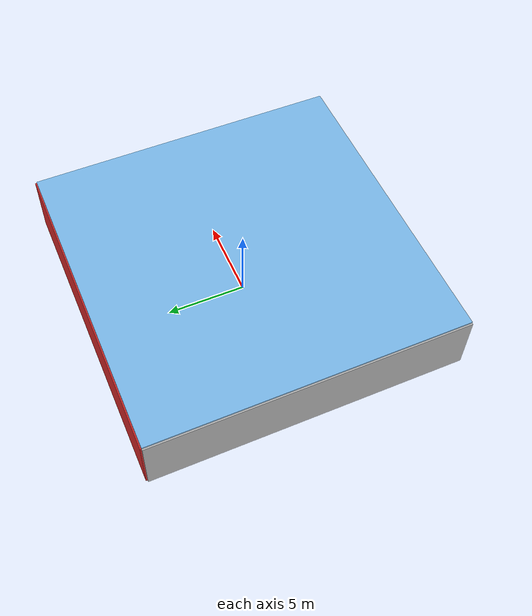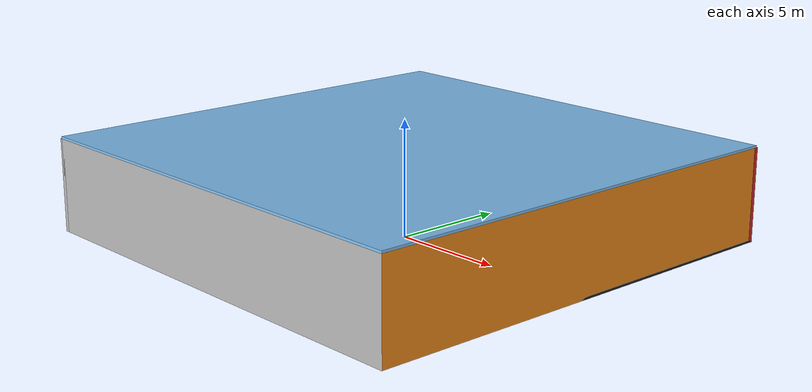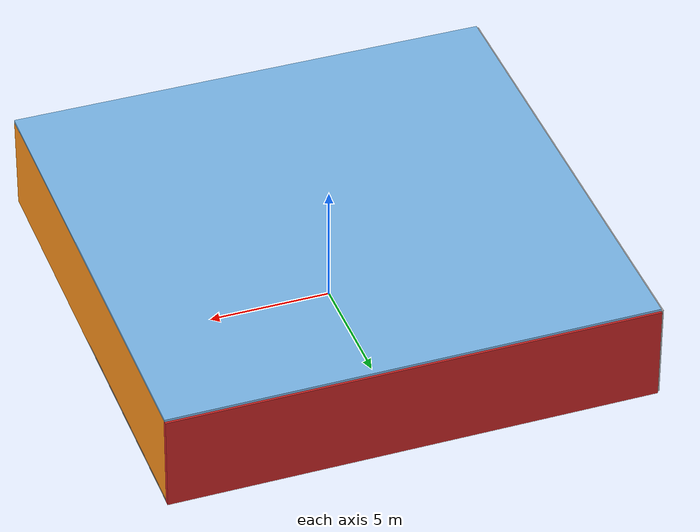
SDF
<sdf version="1.4">
 <world name="default">
  <physics type="ode">
   <max_step_size>0.001</max_step_size>
   <real_time_factor>1</real_time_factor>
   <real_time_update_rate>1000</real_time_update_rate>
   <gravity>0 0 -9.8</gravity>
  </physics>
  <scene><ambient>0.4 0.4 0.4 1</ambient><background>0.7 0.7 0.7 1</background><shadows>1</shadows></scene>
  <model name="Surrounding">
   <static>1</static>
   <link name="Ceiling">
    <collision name="Ceiling_Collision"><geometry><box><size>20 20 0.1</size></box></geometry></collision>
    <visual name="Ceiling_Visual">
     <geometry><box><size>20 20 0.1</size></box></geometry>
     <material>
      <script><uri>file://media/materials/scripts/gazebo.material</uri><name>Gazebo/SkyBlue</name></script>
     </material>
    </visual>
    <pose>0 0 4.05 0 0 0</pose>
   </link>
   <link name="Wall_South">
    <collision name="Wall_South_Collision">
     <geometry><box><size>20 0 4</size></box></geometry>
     <pose>0 0 2 0 -0 0</pose>
    </collision>
    <visual name="Wall_South_Visual">
     <pose>0 0 2 0 -0 0</pose>
     <geometry><box><size>20 0 4</size></box></geometry>
     <material>
      <script><uri>file://media/materials/scripts/gazebo.material</uri><name>Gazebo/JointAnchor</name></script>
     </material>
    </visual>
    <velocity_decay><linear>0</linear><angular>0</angular></velocity_decay>
    <pose>0 -10 0 0 -0 0</pose>
   </link>
   <link name="Wall_East">
    <collision name="Wall_21_Collision">
     <geometry><box><size>20 0 4</size></box></geometry>
     <pose>0 0 2 0 -0 0</pose>
    </collision>
    <visual name="Wall_21_Visual">
     <pose>0 0 2 0 -0 0</pose>
     <geometry><box><size>20 0 4</size></box></geometry>
     <material>
      <script><uri>file://media/materials/scripts/gazebo.material</uri><name>Gazebo/Orange</name></script>
     </material>
    </visual>
    <velocity_decay><linear>0</linear><angular>0</angular></velocity_decay>
    <pose>10 0 0 0 -0 1.5708</pose>
   </link>
   <link name="Wall_North">
    <collision name="Wall_22_Collision">
     <geometry><box><size>20 0.2 4</size></box></geometry>
     <pose>0 0 2 0 -0 0</pose>
    </collision>
    <visual name="Wall_22_Visual">
     <pose>0 0 2 0 -0 0</pose>
     <geometry><box><size>20 0.2 4</size></box></geometry>
     <material>
      <script><uri>file://media/materials/scripts/gazebo.material</uri><name>Gazebo/RedGlow</name></script>
     </material>
    </visual>
    <velocity_decay><linear>0</linear><angular>0</angular></velocity_decay>
    <pose>0 10 0 0 -0 0</pose>
   </link>
   <link name="Wall_West">
    <collision name="Wall_23_Collision">
     <geometry><box><size>20 0.2 4</size></box></geometry>
     <pose>0 0 2 0 -0 0</pose>
    </collision>
    <visual name="Wall_23_Visual">
     <pose>0 0 2 0 -0 0</pose>
     <geometry><box><size>20 0.2 4</size></box></geometry>
     <material>
      <script><uri>file://media/materials/scripts/gazebo.material</uri><name>Gazebo/LightOff</name></script>
     </material>
    </visual>
    <velocity_decay><linear>0</linear><angular>0</angular></velocity_decay>
    <pose>-10 0 0 0 0 -1.5708</pose>
   </link>
   <link name="Ground_link">
    <collision name="collision">
     <pose>0 0 .05 0 -0 0</pose>
     <geometry><box><size>20 20 0.1</size></box></geometry>
    </collision>
    <visual name="visual">
     <pose>0 0 .05 0 -0 0</pose>
     <geometry><box><size>20 20 0.1</size></box></geometry>
     <material>
      <script><uri>file://media/materials/scripts/gazebo.material</uri><name>Gazebo/FlatBlack</name></script>
     </material>
    </visual>
   </link>
   <static>1</static>
  </model>
  <spherical_coordinates>
   <surface_model>EARTH_WGS84</surface_model>
   <latitude_deg>0</latitude_deg>
   <longitude_deg>0</longitude_deg>
   <elevation>0</elevation>
   <heading_deg>0</heading_deg>
  </spherical_coordinates>
  <light name="lightball_0" type="diffuse">
   <diffuse>0.8 0.8 0.8 1</diffuse>
   <specular>0.2 0.2 0.2 1</specular>
   <attenuation>
    <range>100</range>
    <constant>0.7</constant>
    <linear>0.01</linear>
    <quadratic>0.001</quadratic>
   </attenuation>
   <direction>-0.5 0.1 -0.9</direction>
   <pose>5.88144701954 -7.71471944408 2.01547498698 0 0 0</pose>
  </light>
  <light name="lightball_1" type="diffuse">
   <diffuse>0.8 0.8 0.8 1</diffuse>
   <specular>0.2 0.2 0.2 1</specular>
   <attenuation>
    <range>100</range>
    <constant>0.7</constant>
    <linear>0.01</linear>
    <quadratic>0.001</quadratic>
   </attenuation>
   <direction>-0.5 0.1 -0.9</direction>
   <pose>-4.84403335703 -9.45627549569 0.847267339469 0 0 0</pose>
  </light>
  <light name="lightball_2" type="diffuse">
   <diffuse>0.8 0.8 0.8 1</diffuse>
   <specular>0.2 0.2 0.2 1</specular>
   <attenuation>
    <range>100</range>
    <constant>0.7</constant>
    <linear>0.01</linear>
    <quadratic>0.001</quadratic>
   </attenuation>
   <direction>-0.5 0.1 -0.9</direction>
   <pose>8.7923553968 9.54050923226 0.5201319295 0 0 0</pose>
  </light>
  <light name="lightball_3" type="diffuse">
   <diffuse>0.8 0.8 0.8 1</diffuse>
   <specular>0.2 0.2 0.2 1</specular>
   <attenuation>
    <range>100</range>
    <constant>0.7</constant>
    <linear>0.01</linear>
    <quadratic>0.001</quadratic>
   </attenuation>
   <direction>-0.5 0.1 -0.9</direction>
   <pose>2.1689169634 -3.92363540272 2.81693792996 0 0 0</pose>
  </light>
  <light name="lightball_4" type="diffuse">
   <diffuse>0.8 0.8 0.8 1</diffuse>
   <specular>0.2 0.2 0.2 1</specular>
   <attenuation>
    <range>100</range>
    <constant>0.7</constant>
    <linear>0.01</linear>
    <quadratic>0.001</quadratic>
   </attenuation>
   <direction>-0.5 0.1 -0.9</direction>
   <pose>-9.55101648142 -7.43362062909 2.92311638053 0 0 0</pose>
  </light>
  <light name="lightball_5" type="diffuse">
   <diffuse>0.8 0.8 0.8 1</diffuse>
   <specular>0.2 0.2 0.2 1</specular>
   <attenuation>
    <range>100</range>
    <constant>0.7</constant>
    <linear>0.01</linear>
    <quadratic>0.001</quadratic>
   </attenuation>
   <direction>-0.5 0.1 -0.9</direction>
   <pose>-6.56889975831 -7.20632719611 3.32739070885 0 0 0</pose>
  </light>
  <light name="lightball_6" type="diffuse">
   <diffuse>0.8 0.8 0.8 1</diffuse>
   <specular>0.2 0.2 0.2 1</specular>
   <attenuation>
    <range>100</range>
    <constant>0.7</constant>
    <linear>0.01</linear>
    <quadratic>0.001</quadratic>
   </attenuation>
   <direction>-0.5 0.1 -0.9</direction>
   <pose>4.03942228364 -3.52893659875 1.56250996124 0 0 0</pose>
  </light>
  <include>
   <uri>model://robocup_3Dsim_goal</uri>
   <pose>-5.25655412453 -3.82255805386 0 0 0 2.53597972046</pose>
  </include>
  <include>
   <uri>model://construction_cone</uri>
   <pose>-1.97081858848 -8.24874938038 0 0 0 1.22853311981</pose>
  </include>
  <include>
   <uri>model://robocup_3Dsim_goal</uri>
   <pose>1.4346222404 -4.36047000004 0 0 0 1.41912804781</pose>
  </include>
  <include><uri>model://cabinet</uri><pose>1.80839214579 4.28761733796 0 0 0 2.40320488759</pose></include>
  <include>
   <uri>model://construction_cone</uri>
   <pose>7.25857972016 -4.57685605316 0 0 0 2.54777396077</pose>
  </include>
  <include><uri>model://cabinet</uri><pose>8.29937747433 1.3757943242 0 0 0 1.9182182681</pose></include>
 </world>
</sdf>

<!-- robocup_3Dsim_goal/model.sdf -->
<sdf version="1.5">
  <model name="robocup_3d_goal">
    <static>true</static>
    <link name="left_post">
      <pose>0 1.05 0.45 0 0 0</pose>
      <collision name="collision">
        <geometry>
          <cylinder>
            <radius>0.05</radius>
            <length>0.9</length>
          </cylinder>
        </geometry>
      </collision>
      <visual name="visual">
        <geometry>
          <cylinder>
            <radius>0.05</radius>
            <length>0.9</length>
          </cylinder>
        </geometry>
        <material>
          <script>
            <uri>file://media/materials/scripts/gazebo.material</uri>
            <name>Gazebo/ZincYellow</name>
          </script>
        </material>
      </visual>
    </link>
    <link name="left_support_horiz_lower">
      <pose>0.30 1.05 0.01 0 0 0</pose>
      <collision name="collision">
        <geometry>
          <box>
            <size>0.50 0.02 0.02</size>
          </box>
        </geometry>
      </collision>
      <visual name="visual">
        <geometry>
          <box>
            <size>0.50 0.02 0.02</size>
          </box>
        </geometry>
        <material>
          <script>
            <uri>file://media/materials/scripts/gazebo.material</uri>
            <name>Gazebo/White</name>
          </script>
        </material>
      </visual>
    </link>
    <link name="left_support_horiz_upper">
      <pose>0.30 1.05 0.79 0 0 0</pose>
      <collision name="collision">
        <geometry>
          <box>
            <size>0.50 0.02 0.02</size>
          </box>
        </geometry>
      </collision>
      <visual name="visual">
        <geometry>
          <box>
            <size>0.50 0.02 0.02</size>
          </box>
        </geometry>
        <material>
          <script>
            <uri>file://media/materials/scripts/gazebo.material</uri>
            <name>Gazebo/White</name>
          </script>
        </material>
      </visual>
    </link>
    <link name="left_support_vertical">
      <pose>0.56 1.05 0.4 0 1.5708 0</pose>
      <collision name="collision">
        <geometry>
          <box>
            <size>0.80 0.02 0.02</size>
          </box>
        </geometry>
      </collision>
      <visual name="visual">
        <geometry>
          <box>
            <size>0.80 0.02 0.02</size>
          </box>
        </geometry>
        <material>
          <script>
            <uri>file://media/materials/scripts/gazebo.material</uri>
            <name>Gazebo/White</name>
          </script>
        </material>
      </visual>
    </link>
    <link name="right_support_horiz_lower">
      <pose>0.30 -1.05 0.01 0 0 0</pose>
      <collision name="collision">
        <geometry>
          <box>
            <size>0.50 0.02 0.02</size>
          </box>
        </geometry>
      </collision>
      <visual name="visual">
        <geometry>
          <box>
            <size>0.50 0.02 0.02</size>
          </box>
        </geometry>
        <material>
          <script>
            <uri>file://media/materials/scripts/gazebo.material</uri>
            <name>Gazebo/White</name>
          </script>
        </material>
      </visual>
    </link>
    <link name="right_support_horiz_upper">
      <pose>0.30 -1.05 0.79 0 0 0</pose>
      <collision name="collision">
        <geometry>
          <box>
            <size>0.50 0.02 0.02</size>
          </box>
        </geometry>
      </collision>
      <visual name="visual">
        <geometry>
          <box>
            <size>0.50 0.02 0.02</size>
          </box>
        </geometry>
        <material>
          <script>
            <uri>file://media/materials/scripts/gazebo.material</uri>
            <name>Gazebo/White</name>
          </script>
        </material>
      </visual>
    </link>
    <link name="right_support_vertical">
      <pose>0.56 -1.05 0.4 0 1.5708 0</pose>
      <collision name="collision">
        <geometry>
          <box>
            <size>0.80 0.02 0.02</size>
          </box>
        </geometry>
      </collision>
      <visual name="visual">
        <geometry>
          <box>
            <size>0.80 0.02 0.02</size>
          </box>
        </geometry>
        <material>
          <script>
            <uri>file://media/materials/scripts/gazebo.material</uri>
            <name>Gazebo/White</name>
          </script>
        </material>
      </visual>
    </link>
    <link name="center_support_horiz_lower">
      <pose>0.56 0 0.01 0 1.5708 0</pose>
      <collision name="collision">
        <geometry>
          <box>
            <size>0.02 2.08 0.02</size>
          </box>
        </geometry>
      </collision>
      <visual name="visual">
        <geometry>
          <box>
            <size>0.02 2.08 0.02</size>
          </box>
        </geometry>
        <material>
          <script>
            <uri>file://media/materials/scripts/gazebo.material</uri>
            <name>Gazebo/White</name>
          </script>
        </material>
      </visual>
    </link>
    <link name="center_support_horiz_upper">
      <pose>0.56 0 0.79 0 1.5708 0</pose>
      <collision name="collision">
        <geometry>
          <box>
            <size>0.02 2.08 0.02</size>
          </box>
        </geometry>
      </collision>
      <visual name="visual">
        <geometry>
          <box>
            <size>0.02 2.08 0.02</size>
          </box>
        </geometry>
        <material>
          <script>
            <uri>file://media/materials/scripts/gazebo.material</uri>
            <name>Gazebo/White</name>
          </script>
        </material>
      </visual>
    </link>
    <link name="right_post">
      <pose>0 -1.05 0.45 0 0 0</pose>
      <collision name="collision">
        <geometry>
          <cylinder>
            <radius>0.05</radius>
            <length>0.9</length>
          </cylinder>
        </geometry>
      </collision>
      <visual name="visual">
        <geometry>
          <cylinder>
            <radius>0.05</radius>
            <length>0.9</length>
          </cylinder>
        </geometry>
        <material>
          <script>
            <uri>file://media/materials/scripts/gazebo.material</uri>
            <name>Gazebo/ZincYellow</name>
          </script>
        </material>
      </visual>
    </link>
    <link name="crossbar">
      <pose>0 0 0.85 1.57 1.57 0</pose>
      <collision name="collision">
        <geometry>
          <cylinder>
            <radius>0.05</radius>
            <length>2.0</length>
          </cylinder>
        </geometry>
      </collision>
      <visual name="visual">
        <geometry>
          <cylinder>
            <radius>0.05</radius>
            <length>2.0</length>
          </cylinder>
        </geometry>
        <material>
          <script>
            <uri>file://media/materials/scripts/gazebo.material</uri>
            <name>Gazebo/ZincYellow</name>
          </script>
        </material>
      </visual>
    </link>
    <link name="center_net">
      <pose>0.56 0 0.40 0 0 0</pose>
      <collision name="collision">
        <geometry>
          <box>
            <size>0.01 2.1 0.80</size>
          </box>
        </geometry>
      </collision>
      <visual name="visual">
        <geometry>
          <box>
            <size>0.01 2.1 0.80</size>
          </box>
        </geometry>
        <material>
          <script>
            <uri>model://../model_source/models/robocup09_spl_field/materials/scripts/</uri>
            <uri>model://../model_source/models/robocup09_spl_field/materials/textures/</uri>
            <name>RoboCup/Net</name>
          </script>
        </material>
      </visual>
    </link>
    <link name="left_net">
      <pose>0.30 1.05 0.40 0 0 0</pose>
      <collision name="collision">
        <geometry>
          <box>
            <size>0.50 0.01 0.76</size>
          </box>
        </geometry>
      </collision>
      <visual name="visual">
        <geometry>
          <box>
            <size>0.50 0.01 0.76</size>
          </box>
        </geometry>
        <material>
          <script>
            <uri>model://../model_source/models/robocup09_spl_field/materials/scripts/</uri>
            <uri>model://../model_source/models/robocup09_spl_field/materials/textures/</uri>
            <name>RoboCup/Net</name>
          </script>
        </material>
      </visual>
    </link>
    <link name="right_net">
      <pose>0.30 -1.05 0.40 0 0 0</pose>
      <collision name="collision">
        <geometry>
          <box>
            <size>0.50 0.01 0.76</size>
          </box>
        </geometry>
      </collision>
      <visual name="visual">
        <geometry>
          <box>
            <size>0.50 0.01 0.76</size>
          </box>
        </geometry>
        <material>
          <script>
            <uri>model://../model_source/models/robocup09_spl_field/materials/scripts/</uri>
            <uri>model://../model_source/models/robocup09_spl_field/materials/textures/</uri>
            <name>RoboCup/Net</name>
          </script>
        </material>
      </visual>
    </link>
  </model>
</sdf>

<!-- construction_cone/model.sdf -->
<sdf version="1.5">
  <model name="Construction Cone">
    <link name="link">
      <collision name="collision">
        <geometry>
          <mesh>
            <scale>10 10 10</scale>
            <uri>file://isr-testbed/construction_cone/meshes/construction_cone.dae</uri>
          </mesh>
        </geometry>
      </collision>
      <visual name="visual">
        <geometry>
          <mesh>
            <scale>10 10 10</scale>
            <uri>file://isr-testbed/construction_cone/meshes/construction_cone.dae</uri>
          </mesh>
        </geometry>
      </visual>
    </link>
  </model>
</sdf>

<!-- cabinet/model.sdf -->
<sdf version="1.5">
  <model name="cabinet">
    <static>true</static>
    <link name="cabinet_bottom_plate">
      <inertial>
        <pose>0 0 -1 0 0 0</pose>
        <inertia>
          <ixx>2.050000</ixx>
          <ixy>0</ixy>
          <ixz>0</ixz>
          <iyy>2.050000</iyy>
          <iyz>0</iyz>
          <izz>2.050000</izz>
        </inertia>
        <mass>25.000000</mass>
      </inertial>
      <collision name="cabinet_bottom_plate_geom">
        <pose>0 0 0.010000 0 0 0</pose>
        <geometry>
          <box>
            <size>0.450000 0.450000 0.020000</size>
          </box>
        </geometry>
      </collision>
      <visual name="cabinet_bottom_plate_geom_visual">
        <pose>0 0 0.010000 0 0 0</pose>
        <geometry>
          <box>
            <size>0.450000 0.450000 0.020000</size>
          </box>
        </geometry>
        <material>
          <script>
            <uri>model://media/materials/scripts/gazebo.material</uri>
            <name>Gazebo/Wood</name>
          </script>
        </material>
      </visual>
      <collision name="cabinet_bottom_plate_geom_cabinet_back_plate">
        <pose>0.235000 0 0.510000 0 0 0</pose>
        <geometry>
          <box>
            <size>0.020000 0.450000 1.020000</size>
          </box>
        </geometry>
      </collision>
      <visual name="cabinet_bottom_plate_geom_cabinet_back_plate_visual">
        <pose>0.235000 0 0.510000 0 0 0</pose>
        <geometry>
          <box>
            <size>0.020000 0.450000 1.020000</size>
          </box>
        </geometry>
        <material>
          <script>
            <uri>model://media/materials/scripts/gazebo.material</uri>
            <name>Gazebo/Wood</name>
          </script>
        </material>
      </visual>
      <collision name="cabinet_bottom_plate_geom_cabinet_left_plate">
        <pose>0 0.235000 0.510000 0 0 0</pose>
        <geometry>
          <box>
            <size>0.450000 0.020000 1.020000</size>
          </box>
        </geometry>
      </collision>
      <visual name="cabinet_bottom_plate_geom_cabinet_left_plate_visual">
        <pose>0 0.235000 0.510000 0 0 0</pose>
        <geometry>
          <box>
            <size>0.450000 0.020000 1.020000</size>
          </box>
        </geometry>
        <material>
          <script>
            <uri>model://media/materials/scripts/gazebo.material</uri>
            <name>Gazebo/Wood</name>
          </script>
        </material>
      </visual>
      <collision name="cabinet_bottom_plate_geom_cabinet_middle_plate">
        <pose>0 0 0.510000 0 0 0</pose>
        <geometry>
          <box>
            <size>0.450000 0.450000 0.020000</size>
          </box>
        </geometry>
      </collision>
      <visual name="cabinet_bottom_plate_geom_cabinet_middle_plate_visual">
        <pose>0 0 0.510000 0 0 0</pose>
        <geometry>
          <box>
            <size>0.450000 0.450000 0.020000</size>
          </box>
        </geometry>
        <material>
          <script>
            <uri>model://media/materials/scripts/gazebo.material</uri>
            <name>Gazebo/Wood</name>
          </script>
        </material>
      </visual>
      <collision name="cabinet_bottom_plate_geom_cabinet_right_plate">
        <pose>0 -0.235000 0.510000 0 0 0</pose>
        <geometry>
          <box>
            <size>0.450000 0.020000 1.020000</size>
          </box>
        </geometry>
      </collision>
      <visual name="cabinet_bottom_plate_geom_cabinet_right_plate_visual">
        <pose>0 -0.235000 0.510000 0 0 0</pose>
        <geometry>
          <box>
            <size>0.450000 0.020000 1.020000</size>
          </box>
        </geometry>
        <material>
          <script>
            <uri>model://media/materials/scripts/gazebo.material</uri>
            <name>Gazebo/Wood</name>
          </script>
        </material>
      </visual>
      <collision name="cabinet_bottom_plate_geom_cabinet_top_plate">
        <pose>0 0 1.010000 0 0 0</pose>
        <geometry>
          <box>
            <size>0.450000 0.450000 0.020000</size>
          </box>
        </geometry>
      </collision>
      <visual name="cabinet_bottom_plate_geom_cabinet_top_plate_visual">
        <pose>0 0 1.010000 0 0 0</pose>
        <geometry>
          <box>
            <size>0.450000 0.450000 0.020000</size>
          </box>
        </geometry>
        <material>
          <script>
            <uri>model://media/materials/scripts/gazebo.material</uri>
            <name>Gazebo/Wood</name>
          </script>
        </material>
      </visual>
    </link>
  </model>
</sdf>
